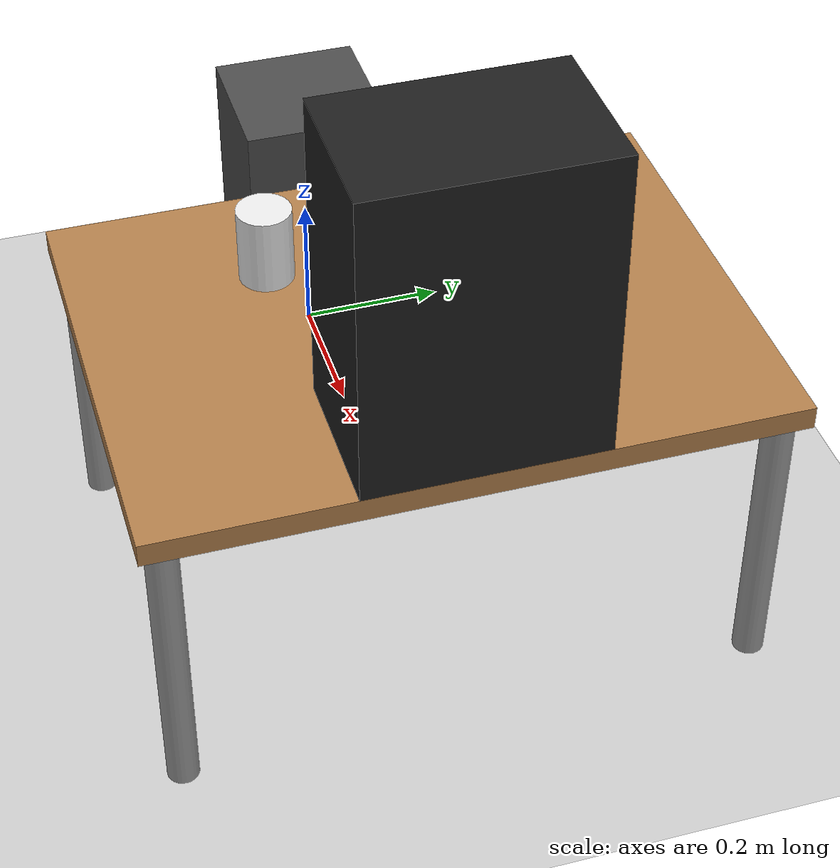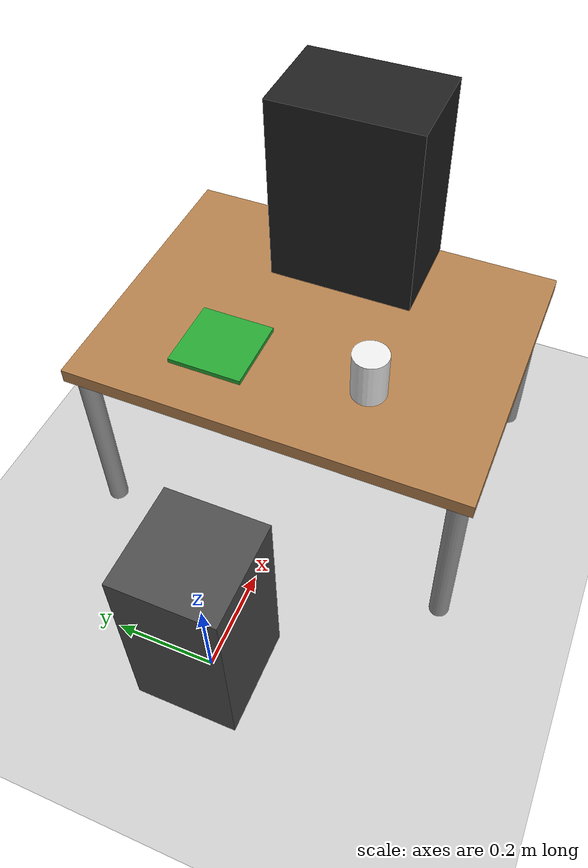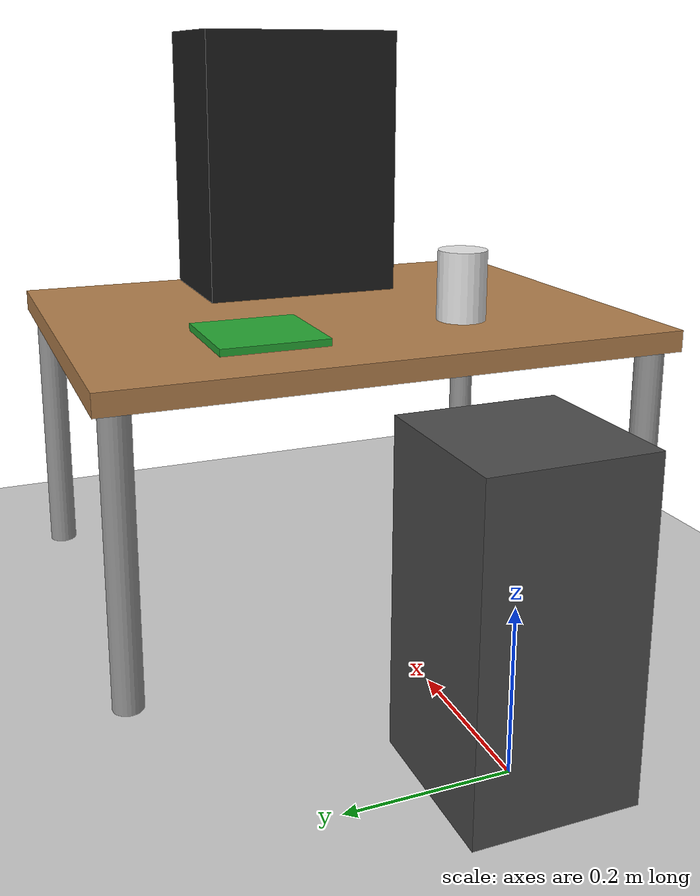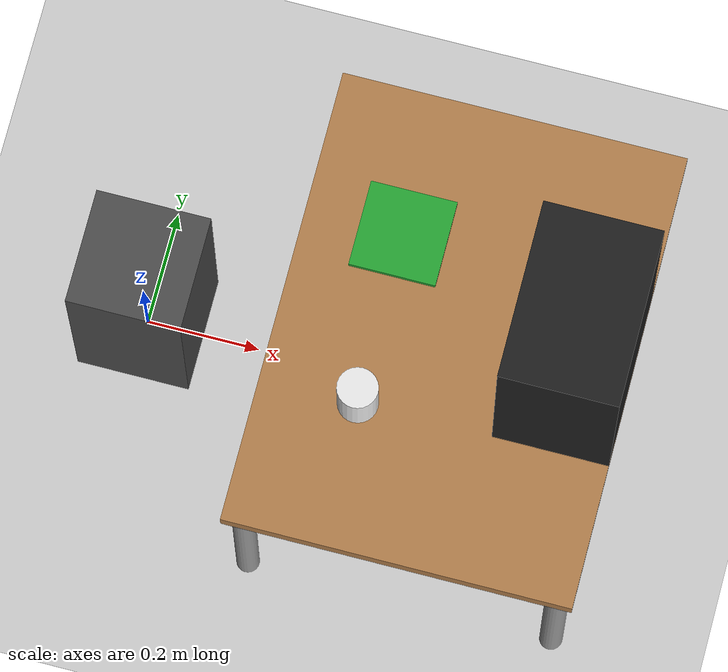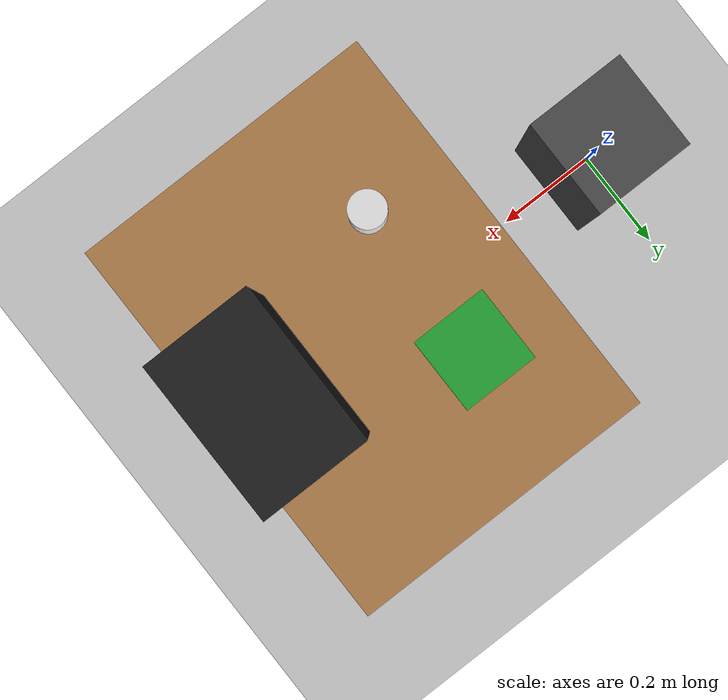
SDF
<?xml version="1.0" ?>
<sdf version="1.7">
  <world name="barista">

    <!-- kinematic attach/detach services: /link_attacher_node/attach, /link_attacher_node/detach -->
    <plugin name="ros_link_attacher_plugin" filename="libgazebo_ros_link_attacher.so"/>

    <light name="sun" type="directional">
      <cast_shadows>1</cast_shadows>
      <pose>0 0 10 0 0 0</pose>
      <diffuse>0.8 0.8 0.8 1</diffuse>
      <specular>0.2 0.2 0.2 1</specular>
      <direction>-0.5 0.1 -0.9</direction>
    </light>

    <model name="ground_plane">
      <static>1</static>
      <link name="ground_plane_link">
        <collision name="collision">
          <geometry><plane><normal>0 0 1</normal><size>100 100</size></plane></geometry>
          <surface><friction><ode><mu>100</mu><mu2>50</mu2></ode></friction></surface>
        </collision>
        <visual name="visual">
          <cast_shadows>0</cast_shadows>
          <geometry><plane><normal>0 0 1</normal><size>100 100</size></plane></geometry>
          <material><script><uri>file://media/materials/scripts/gazebo.material</uri><name>Gazebo/Grey</name></script></material>
        </visual>
      </link>
    </model>

    <physics type="ode">
      <max_step_size>0.001</max_step_size>
      <real_time_factor>1</real_time_factor>
      <real_time_update_rate>1000</real_time_update_rate>
    </physics>
    <gravity>0 0 -9.8</gravity>
    <scene>
      <ambient>0.4 0.4 0.4 1</ambient>
      <background>0.7 0.7 0.7 1</background>
      <shadows>1</shadows>
    </scene>

    <!-- Robot pedestal -->
    <model name="pedestal">
      <static>1</static>
      <pose>0 0 0.20 0 0 0</pose>
      <link name="link">
        <collision name="collision"><geometry><box><size>0.20 0.20 0.40</size></box></geometry></collision>
        <visual name="visual">
          <geometry><box><size>0.20 0.20 0.40</size></box></geometry>
          <material><script><uri>file://media/materials/scripts/gazebo.material</uri><name>Gazebo/DarkGrey</name></script></material>
        </visual>
      </link>
    </model>

    <!-- Workbench: top plus four legs -->
    <model name="table">
      <static>1</static>
      <pose>0.55 0 0 0 0 0</pose>
      <link name="link">
        <collision name="top"><pose>0 0 0.40 0 0 0</pose><geometry><box><size>0.60 0.80 0.03</size></box></geometry>
          <surface><friction><ode><mu>0.8</mu><mu2>0.8</mu2></ode></friction></surface></collision>
        <visual name="top_visual"><pose>0 0 0.40 0 0 0</pose><geometry><box><size>0.60 0.80 0.03</size></box></geometry>
          <material><script><uri>file://media/materials/scripts/gazebo.material</uri><name>Gazebo/Wood</name></script></material></visual>
        <collision name="leg1"><pose> 0.27  0.37 0.1925 0 0 0</pose><geometry><cylinder><radius>0.02</radius><length>0.385</length></cylinder></geometry></collision>
        <visual    name="leg1_v"><pose> 0.27  0.37 0.1925 0 0 0</pose><geometry><cylinder><radius>0.02</radius><length>0.385</length></cylinder></geometry>
          <material><script><uri>file://media/materials/scripts/gazebo.material</uri><name>Gazebo/Grey</name></script></material></visual>
        <collision name="leg2"><pose> 0.27 -0.37 0.1925 0 0 0</pose><geometry><cylinder><radius>0.02</radius><length>0.385</length></cylinder></geometry></collision>
        <visual    name="leg2_v"><pose> 0.27 -0.37 0.1925 0 0 0</pose><geometry><cylinder><radius>0.02</radius><length>0.385</length></cylinder></geometry>
          <material><script><uri>file://media/materials/scripts/gazebo.material</uri><name>Gazebo/Grey</name></script></material></visual>
        <collision name="leg3"><pose>-0.27  0.37 0.1925 0 0 0</pose><geometry><cylinder><radius>0.02</radius><length>0.385</length></cylinder></geometry></collision>
        <visual    name="leg3_v"><pose>-0.27  0.37 0.1925 0 0 0</pose><geometry><cylinder><radius>0.02</radius><length>0.385</length></cylinder></geometry>
          <material><script><uri>file://media/materials/scripts/gazebo.material</uri><name>Gazebo/Grey</name></script></material></visual>
        <collision name="leg4"><pose>-0.27 -0.37 0.1925 0 0 0</pose><geometry><cylinder><radius>0.02</radius><length>0.385</length></cylinder></geometry></collision>
        <visual    name="leg4_v"><pose>-0.27 -0.37 0.1925 0 0 0</pose><geometry><cylinder><radius>0.02</radius><length>0.385</length></cylinder></geometry>
          <material><script><uri>file://media/materials/scripts/gazebo.material</uri><name>Gazebo/Grey</name></script></material></visual>
      </link>
    </model>

    <!-- Cup: manipulation target. Dynamic so it can be attached to the gripper and placed on the pad.
         Inertia of a solid cylinder m=0.05 kg, r=0.035, h=0.10. -->
    <model name="cup">
      <static>0</static>
      <pose>0.42 -0.15 0.465 0 0 0</pose>
      <link name="link">
        <inertial>
          <mass>0.05</mass>
          <inertia><ixx>5.7e-05</ixx><iyy>5.7e-05</iyy><izz>3.1e-05</izz><ixy>0</ixy><ixz>0</ixz><iyz>0</iyz></inertia>
        </inertial>
        <collision name="collision">
          <geometry><cylinder><radius>0.035</radius><length>0.10</length></cylinder></geometry>
          <surface><friction><ode><mu>1.0</mu><mu2>1.0</mu2></ode></friction>
            <contact><ode><kp>1e6</kp><kd>100</kd><min_depth>0.001</min_depth></ode></contact></surface>
        </collision>
        <visual name="visual">
          <geometry><cylinder><radius>0.035</radius><length>0.10</length></cylinder></geometry>
          <material><script><uri>file://media/materials/scripts/gazebo.material</uri><name>Gazebo/White</name></script></material>
        </visual>
      </link>
    </model>

    <!-- Coffee machine representation (obstacle) -->
    <model name="coffee_machine">
      <static>1</static>
      <pose>0.75 0 0.615 0 0 0</pose>
      <link name="link">
        <collision name="collision"><geometry><box><size>0.20 0.30 0.40</size></box></geometry></collision>
        <visual name="visual">
          <geometry><box><size>0.20 0.30 0.40</size></box></geometry>
          <material><script><uri>file://media/materials/scripts/gazebo.material</uri><name>Gazebo/Black</name></script></material>
        </visual>
      </link>
    </model>

    <!-- Place / service area -->
    <model name="place_pad">
      <static>1</static>
      <pose>0.42 0.15 0.42 0 0 0</pose>
      <link name="link">
        <collision name="collision"><geometry><box><size>0.15 0.15 0.01</size></box></geometry>
          <surface><friction><ode><mu>1.0</mu><mu2>1.0</mu2></ode></friction></surface></collision>
        <visual name="visual">
          <geometry><box><size>0.15 0.15 0.01</size></box></geometry>
          <material><script><uri>file://media/materials/scripts/gazebo.material</uri><name>Gazebo/Green</name></script></material>
        </visual>
      </link>
    </model>

    <gui fullscreen="0">
      <camera name="user_camera">
        <pose>2.2 -1.8 1.6 0 0.35 2.4</pose>
        <view_controller>orbit</view_controller>
      </camera>
    </gui>

  </world>
</sdf>
